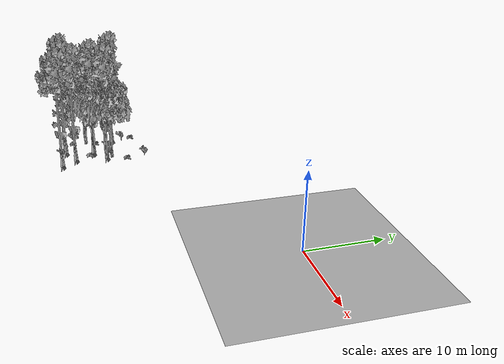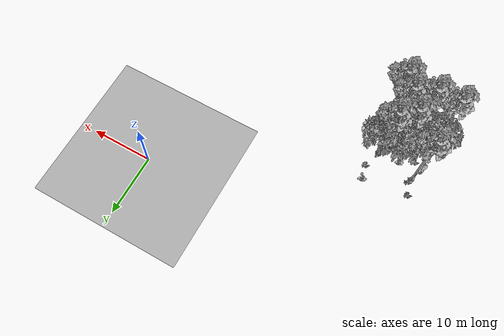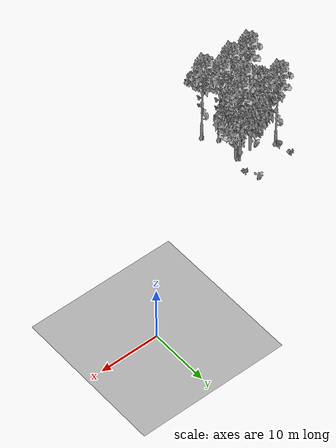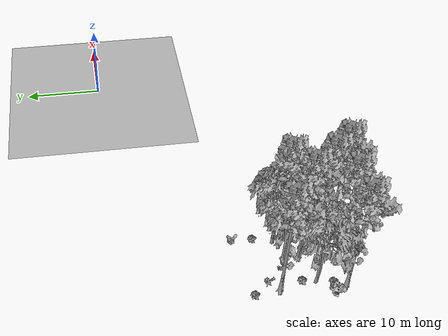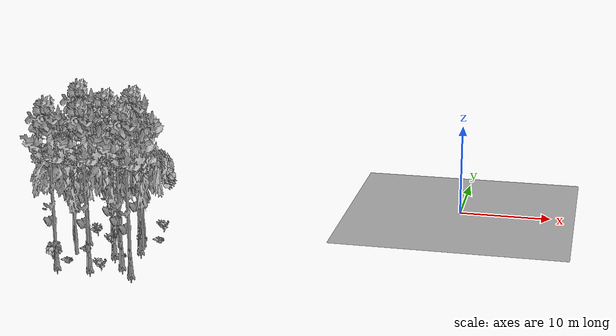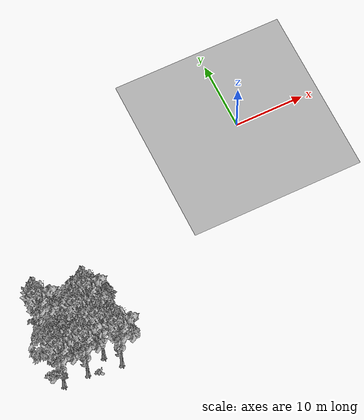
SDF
<sdf version="1.7">
 <world name="default">
  <model name="ground_plane">
   <static>1</static>
   <link name="link">
    <collision name="collision">
     <pose>-50 0 0 0 -0 0</pose>
     <geometry><plane><normal>0 0 1</normal><size>80 80</size></plane></geometry>
     <surface><contact><ode><min_depth>0.01</min_depth><max_vel>0</max_vel></ode></contact></surface>
    </collision>
    <visual name="grass">
     <cast_shadows>0</cast_shadows>
     <geometry>
      <mesh>
       <scale>0.46714285714285714 0.46714285714285714 0.1</scale>
       <uri>file://grass_plane/meshes/grass_plane.dae</uri>
      </mesh>
     </geometry>
    </visual>
   </link>
  </model>
  <model name="Tree 46">
   <static>1</static>
   <pose>-34.212602336548784 -24.632280740968085 0 1.57079 -0 0</pose>
   <link name="link">
    <collision name="collision">
     <geometry><mesh><scale>3.5 5 3.5</scale><uri>model://tree_9/meshes/tree_9.obj</uri></mesh></geometry>
    </collision>
    <visual name="visual">
     <geometry><mesh><scale>3.5 5 3.5</scale><uri>model://tree_9/meshes/tree_9.obj</uri></mesh></geometry>
    </visual>
   </link>
  </model>
  <model name="Tree 183">
   <static>1</static>
   <pose>-31.01134543071901 -18.76625769696206 0 1.57079 -0 0</pose>
   <link name="link">
    <collision name="collision">
     <geometry><mesh><scale>3.5 5 3.5</scale><uri>model://tree_9/meshes/tree_9.obj</uri></mesh></geometry>
    </collision>
    <visual name="visual">
     <geometry><mesh><scale>3.5 5 3.5</scale><uri>model://tree_9/meshes/tree_9.obj</uri></mesh></geometry>
    </visual>
   </link>
  </model>
  <model name="Tree 186">
   <static>1</static>
   <pose>-37.020952966990315 -21.472134734574347 0 1.57079 -0 0</pose>
   <link name="link">
    <collision name="collision">
     <geometry><mesh><scale>3.5 5 3.5</scale><uri>model://tree_2/meshes/tree_2.obj</uri></mesh></geometry>
    </collision>
    <visual name="visual">
     <geometry><mesh><scale>3.5 5 3.5</scale><uri>model://tree_2/meshes/tree_2.obj</uri></mesh></geometry>
    </visual>
   </link>
  </model>
  <model name="Tree 206">
   <static>1</static>
   <pose>-33.47390122099144 -18.640385335339253 0 1.57079 -0 0</pose>
   <link name="link">
    <collision name="collision">
     <geometry><mesh><scale>3.5 5 3.5</scale><uri>model://tree_2/meshes/tree_2.obj</uri></mesh></geometry>
    </collision>
    <visual name="visual">
     <geometry><mesh><scale>3.5 5 3.5</scale><uri>model://tree_2/meshes/tree_2.obj</uri></mesh></geometry>
    </visual>
   </link>
  </model>
  <model name="Tree 212">
   <static>1</static>
   <pose>-29.582014132976692 -25.301642073007137 0 1.57079 -0 0</pose>
   <link name="link">
    <collision name="collision">
     <geometry><mesh><scale>3.5 5 3.5</scale><uri>model://tree_9/meshes/tree_9.obj</uri></mesh></geometry>
    </collision>
    <visual name="visual">
     <geometry><mesh><scale>3.5 5 3.5</scale><uri>model://tree_9/meshes/tree_9.obj</uri></mesh></geometry>
    </visual>
   </link>
  </model>
  <model name="Tree 305">
   <static>1</static>
   <pose>-30.948224486848105 -18.056115978298585 0 1.57079 -0 0</pose>
   <link name="link">
    <collision name="collision">
     <geometry><mesh><scale>3.5 5 3.5</scale><uri>model://tree_2/meshes/tree_2.obj</uri></mesh></geometry>
    </collision>
    <visual name="visual">
     <geometry><mesh><scale>3.5 5 3.5</scale><uri>model://tree_2/meshes/tree_2.obj</uri></mesh></geometry>
    </visual>
   </link>
  </model>
  <model name="Tree 313">
   <static>1</static>
   <pose>-31.28641153851027 -23.307829852413306 0 1.57079 -0 0</pose>
   <link name="link">
    <collision name="collision">
     <geometry><mesh><scale>3.5 5 3.5</scale><uri>model://tree_9/meshes/tree_9.obj</uri></mesh></geometry>
    </collision>
    <visual name="visual">
     <geometry><mesh><scale>3.5 5 3.5</scale><uri>model://tree_9/meshes/tree_9.obj</uri></mesh></geometry>
    </visual>
   </link>
  </model>
  <model name="Tree 353">
   <static>1</static>
   <pose>-37.30977761434725 -17.365196705178853 0 1.57079 -0 0</pose>
   <link name="link">
    <collision name="collision">
     <geometry><mesh><scale>3.5 5 3.5</scale><uri>model://tree_9/meshes/tree_9.obj</uri></mesh></geometry>
    </collision>
    <visual name="visual">
     <geometry><mesh><scale>3.5 5 3.5</scale><uri>model://tree_9/meshes/tree_9.obj</uri></mesh></geometry>
    </visual>
   </link>
  </model>
  <model name="Tree 374">
   <static>1</static>
   <pose>-33.28639231937608 -20.481368274955358 0 1.57079 -0 0</pose>
   <link name="link">
    <collision name="collision">
     <geometry><mesh><scale>3.5 5 3.5</scale><uri>model://tree_2/meshes/tree_2.obj</uri></mesh></geometry>
    </collision>
    <visual name="visual">
     <geometry><mesh><scale>3.5 5 3.5</scale><uri>model://tree_2/meshes/tree_2.obj</uri></mesh></geometry>
    </visual>
   </link>
  </model>
  <model name="Tree 393">
   <static>1</static>
   <pose>-33.15809938152162 -20.579193301239265 0 1.57079 -0 0</pose>
   <link name="link">
    <collision name="collision">
     <geometry><mesh><scale>3.5 5 3.5</scale><uri>model://tree_9/meshes/tree_9.obj</uri></mesh></geometry>
    </collision>
    <visual name="visual">
     <geometry><mesh><scale>3.5 5 3.5</scale><uri>model://tree_9/meshes/tree_9.obj</uri></mesh></geometry>
    </visual>
   </link>
  </model>
  <model name="Tree 435">
   <static>1</static>
   <pose>-30.797890879339516 -18.84555134569089 0 1.57079 -0 0</pose>
   <link name="link">
    <collision name="collision">
     <geometry><mesh><scale>3.5 5 3.5</scale><uri>model://tree_2/meshes/tree_2.obj</uri></mesh></geometry>
    </collision>
    <visual name="visual">
     <geometry><mesh><scale>3.5 5 3.5</scale><uri>model://tree_2/meshes/tree_2.obj</uri></mesh></geometry>
    </visual>
   </link>
  </model>
  <model name="Tree 575">
   <static>1</static>
   <pose>-37.69092200295688 -24.69730900969571 0 1.57079 -0 0</pose>
   <link name="link">
    <collision name="collision">
     <geometry><mesh><scale>3.5 5 3.5</scale><uri>model://tree_9/meshes/tree_9.obj</uri></mesh></geometry>
    </collision>
    <visual name="visual">
     <geometry><mesh><scale>3.5 5 3.5</scale><uri>model://tree_9/meshes/tree_9.obj</uri></mesh></geometry>
    </visual>
   </link>
  </model>
  <model name="Bush 66">
   <static>1</static>
   <pose>-34.25037541023923 -18.4522215561692 0 1.57079 -0 0</pose>
   <link name="link">
    <collision name="collision">
     <geometry><mesh><scale>2 2 2</scale><uri>model://bush_0/meshes/bush_0.obj</uri></mesh></geometry>
     <surface><contact><collide_without_contact>false</collide_without_contact></contact></surface>
    </collision>
    <visual name="visual">
     <geometry><mesh><scale>2 2 2</scale><uri>model://bush_0/meshes/bush_0.obj</uri></mesh></geometry>
    </visual>
   </link>
  </model>
  <model name="Bush 91">
   <static>1</static>
   <pose>-30.052486001069607 -15.880335759934816 0 1.57079 -0 0</pose>
   <link name="link">
    <collision name="collision">
     <geometry><mesh><scale>2 2 2</scale><uri>model://bush_2/meshes/bush_2.obj</uri></mesh></geometry>
     <surface><contact><collide_without_contact>false</collide_without_contact></contact></surface>
    </collision>
    <visual name="visual">
     <geometry><mesh><scale>2 2 2</scale><uri>model://bush_2/meshes/bush_2.obj</uri></mesh></geometry>
    </visual>
   </link>
  </model>
  <model name="Bush 140">
   <static>1</static>
   <pose>-38.706617158202256 -23.318483511903132 0 1.57079 -0 0</pose>
   <link name="link">
    <collision name="collision">
     <geometry><mesh><scale>2 2 2</scale><uri>model://bush_1/meshes/bush_1.obj</uri></mesh></geometry>
     <surface><contact><collide_without_contact>false</collide_without_contact></contact></surface>
    </collision>
    <visual name="visual">
     <geometry><mesh><scale>2 2 2</scale><uri>model://bush_1/meshes/bush_1.obj</uri></mesh></geometry>
    </visual>
   </link>
  </model>
  <model name="Bush 274">
   <static>1</static>
   <pose>-30.40188630332836 -13.206824008421087 0 1.57079 -0 0</pose>
   <link name="link">
    <collision name="collision">
     <geometry><mesh><scale>2 2 2</scale><uri>model://bush_0/meshes/bush_0.obj</uri></mesh></geometry>
     <surface><contact><collide_without_contact>false</collide_without_contact></contact></surface>
    </collision>
    <visual name="visual">
     <geometry><mesh><scale>2 2 2</scale><uri>model://bush_0/meshes/bush_0.obj</uri></mesh></geometry>
    </visual>
   </link>
  </model>
  <model name="Bush 276">
   <static>1</static>
   <pose>-36.83274817586364 -15.93534980599592 0 1.57079 -0 0</pose>
   <link name="link">
    <collision name="collision">
     <geometry><mesh><scale>2 2 2</scale><uri>model://bush_5/meshes/bush_5.obj</uri></mesh></geometry>
     <surface><contact><collide_without_contact>false</collide_without_contact></contact></surface>
    </collision>
    <visual name="visual">
     <geometry><mesh><scale>2 2 2</scale><uri>model://bush_5/meshes/bush_5.obj</uri></mesh></geometry>
    </visual>
   </link>
  </model>
  <model name="Bush 290">
   <static>1</static>
   <pose>-36.561783222723044 -20.057259436951274 0 1.57079 -0 0</pose>
   <link name="link">
    <collision name="collision">
     <geometry><mesh><scale>2 2 2</scale><uri>model://bush_2/meshes/bush_2.obj</uri></mesh></geometry>
     <surface><contact><collide_without_contact>false</collide_without_contact></contact></surface>
    </collision>
    <visual name="visual">
     <geometry><mesh><scale>2 2 2</scale><uri>model://bush_2/meshes/bush_2.obj</uri></mesh></geometry>
    </visual>
   </link>
  </model>
  <model name="Bush 305">
   <static>1</static>
   <pose>-32.72464055646928 -25.262859730718972 0 1.57079 -0 0</pose>
   <link name="link">
    <collision name="collision">
     <geometry><mesh><scale>2 2 2</scale><uri>model://bush_0/meshes/bush_0.obj</uri></mesh></geometry>
     <surface><contact><collide_without_contact>false</collide_without_contact></contact></surface>
    </collision>
    <visual name="visual">
     <geometry><mesh><scale>2 2 2</scale><uri>model://bush_0/meshes/bush_0.obj</uri></mesh></geometry>
    </visual>
   </link>
  </model>
  <model name="Bush 454">
   <static>1</static>
   <pose>-30.960957432189645 -18.16215797939094 0 1.57079 -0 0</pose>
   <link name="link">
    <collision name="collision">
     <geometry><mesh><scale>2 2 2</scale><uri>model://bush_5/meshes/bush_5.obj</uri></mesh></geometry>
     <surface><contact><collide_without_contact>false</collide_without_contact></contact></surface>
    </collision>
    <visual name="visual">
     <geometry><mesh><scale>2 2 2</scale><uri>model://bush_5/meshes/bush_5.obj</uri></mesh></geometry>
    </visual>
   </link>
  </model>
  <model name="Bush 477">
   <static>1</static>
   <pose>-37.76787440143065 -14.480634640282808 0 1.57079 -0 0</pose>
   <link name="link">
    <collision name="collision">
     <geometry><mesh><scale>2 2 2</scale><uri>model://bush_2/meshes/bush_2.obj</uri></mesh></geometry>
     <surface><contact><collide_without_contact>false</collide_without_contact></contact></surface>
    </collision>
    <visual name="visual">
     <geometry><mesh><scale>2 2 2</scale><uri>model://bush_2/meshes/bush_2.obj</uri></mesh></geometry>
    </visual>
   </link>
  </model>
  <model name="Bush 604">
   <static>1</static>
   <pose>-37.12624191381149 -23.45190233177613 0 1.57079 -0 0</pose>
   <link name="link">
    <collision name="collision">
     <geometry><mesh><scale>2 2 2</scale><uri>model://bush_2/meshes/bush_2.obj</uri></mesh></geometry>
     <surface><contact><collide_without_contact>false</collide_without_contact></contact></surface>
    </collision>
    <visual name="visual">
     <geometry><mesh><scale>2 2 2</scale><uri>model://bush_2/meshes/bush_2.obj</uri></mesh></geometry>
    </visual>
   </link>
  </model>
  <model name="Bush 621">
   <static>1</static>
   <pose>-32.22874302143394 -21.20664707647837 0 1.57079 -0 0</pose>
   <link name="link">
    <collision name="collision">
     <geometry><mesh><scale>2 2 2</scale><uri>model://bush_2/meshes/bush_2.obj</uri></mesh></geometry>
     <surface><contact><collide_without_contact>false</collide_without_contact></contact></surface>
    </collision>
    <visual name="visual">
     <geometry><mesh><scale>2 2 2</scale><uri>model://bush_2/meshes/bush_2.obj</uri></mesh></geometry>
    </visual>
   </link>
  </model>
 </world>
</sdf>
